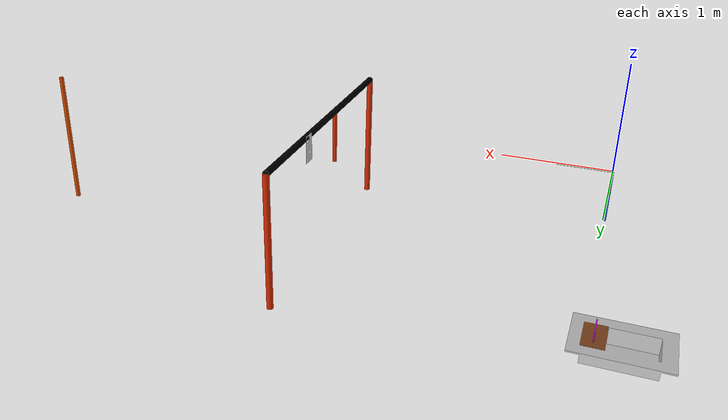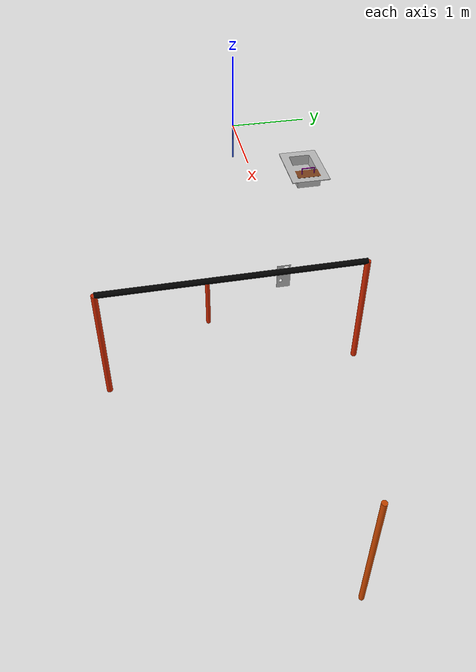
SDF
<sdf version="1.7">
 <world name="lake">
  <physics name="default_physics" default="1" type="ode">
   <max_step_size>0.002</max_step_size>
   <real_time_factor>1</real_time_factor>
   <real_time_update_rate>500</real_time_update_rate>
   <ode>
    <solver>
     <type>quick</type>
     <iters>50</iters>
     <sor>0.5</sor>
     <use_dynamic_moi_rescaling>0</use_dynamic_moi_rescaling>
    </solver>
    <constraints>
     <cfm>0</cfm>
     <erp>0.2</erp>
     <contact_max_correcting_vel>100</contact_max_correcting_vel>
     <contact_surface_layer>0.001</contact_surface_layer>
    </constraints>
   </ode>
  </physics>
  <scene>
   <ambient>0.01 0.01 0.01 1</ambient>
   <sky><clouds><speed>12</speed></clouds></sky>
   <shadows>0</shadows>
   <background>0.7 0.7 0.7 1</background>
  </scene>
  <spherical_coordinates>
   <latitude_deg>47.6279</latitude_deg>
   <longitude_deg>9.33455</longitude_deg>
   <surface_model>EARTH_WGS84</surface_model>
   <elevation>0</elevation>
   <heading_deg>0</heading_deg>
  </spherical_coordinates>
  <light name="sun1" type="directional">
   <pose>50 0 150 0 -0 0</pose>
   <diffuse>1 1 1 1</diffuse>
   <specular>0.1 0.1 0.1 1</specular>
   <direction>0.3 0.3 -1</direction>
   <cast_shadows>0</cast_shadows>
   <attenuation><range>10</range></attenuation>
   <spot><inner_angle>0</inner_angle><outer_angle>0</outer_angle><falloff>0</falloff></spot>
  </light>
  <light name="sun" type="directional">
   <cast_shadows>0</cast_shadows>
   <pose>0 0 10 0 -0 0</pose>
   <diffuse>0.8 0.8 0.8 1</diffuse>
   <specular>0.2 0.2 0.2 1</specular>
   <attenuation>
    <range>1000</range>
    <constant>0.9</constant>
    <linear>0.01</linear>
    <quadratic>0.001</quadratic>
   </attenuation>
   <direction>-0.5 0.1 -0.9</direction>
   <spot><inner_angle>0</inner_angle><outer_angle>0</outer_angle><falloff>0</falloff></spot>
  </light>
  <model name="world_ned">
   <static>1</static>
   <link name="world_ned">
    <gravity>0</gravity>
    <pose>0 0 0 -3.14159 -0 1.5708</pose>
    <visual name="N_visual">
     <pose>0.25 0 0 1.5708 -0 1.5708</pose>
     <geometry><cylinder><radius>0.01</radius><length>0.5</length></cylinder></geometry>
     <material>
      <script><uri>file://media/materials/scripts/gazebo.material</uri><name>Gazebo/Red</name></script>
     </material>
    </visual>
    <visual name="E_visual">
     <pose>0 0.25 0 1.5708 -0 0</pose>
     <geometry><cylinder><radius>0.01</radius><length>0.5</length></cylinder></geometry>
     <material>
      <script><uri>file://media/materials/scripts/gazebo.material</uri><name>Gazebo/Green</name></script>
     </material>
    </visual>
    <visual name="D_visual">
     <pose>0 0 0.25 0 -0 0</pose>
     <geometry><cylinder><radius>0.01</radius><length>0.5</length></cylinder></geometry>
     <material>
      <script><uri>file://media/materials/scripts/gazebo.material</uri><name>Gazebo/Blue</name></script>
     </material>
    </visual>
   </link>
  </model>
  <plugin name="underwater_current_plugin" filename="libuuv_underwater_current_ros_plugin.so">
   <namespace>hydrodynamics</namespace>
   <constant_current>
    <topic>current_velocity</topic>
    <velocity><mean>0</mean><min>0</min><max>5</max><mu>0.0</mu><noiseAmp>0.0</noiseAmp></velocity>
    <horizontal_angle>
     <mean>0</mean>
     <min>-3.141592653589793238</min>
     <max>3.141592653589793238</max>
     <mu>0.0</mu>
     <noiseAmp>0.0</noiseAmp>
    </horizontal_angle>
    <vertical_angle>
     <mean>0</mean>
     <min>-3.141592653589793238</min>
     <max>3.141592653589793238</max>
     <mu>0.0</mu>
     <noiseAmp>0.0</noiseAmp>
    </vertical_angle>
   </constant_current>
  </plugin>
  <plugin name="sc_interface" filename="libuuv_sc_ros_interface_plugin.so"/>
  <gravity>0 0 -9.8</gravity>
  <magnetic_field>6e-06 2.3e-05 -4.2e-05</magnetic_field>
  <atmosphere type="adiabatic"/>
  <model name="gate">
   <static>1</static>
   <link name="link">
    <must_be_base_link>1</must_be_base_link>
    <collision name="collision">
     <geometry><mesh><uri>model://gate/meshes/gate.dae</uri></mesh></geometry>
    </collision>
    <visual name="visual">
     <cast_shadows>0</cast_shadows>
     <geometry><mesh><uri>model://gate/meshes/gate.dae</uri></mesh></geometry>
    </visual>
   </link>
   <pose>3.01586 -2.06417 -1.64571 0 -0 1.56898</pose>
  </model>
  <model name="gman_torpedo">
   <static>1</static>
   <link name="link">
    <must_be_base_link>1</must_be_base_link>
    <collision name="collision">
     <geometry><mesh><uri>model://gman_torpedo/meshes/GmanTorpedoCutout.dae</uri></mesh></geometry>
    </collision>
    <visual name="visual">
     <cast_shadows>0</cast_shadows>
     <geometry><mesh><uri>model://gman_torpedo/meshes/GmanTorpedoCutout.dae</uri></mesh></geometry>
    </visual>
   </link>
   <pose>2.977 -0.004194 -0.241483 0 0 -1.58169</pose>
  </model>
  <model name="bin">
   <static>1</static>
   <link name="link">
    <must_be_base_link>1</must_be_base_link>
    <collision name="collision">
     <geometry><mesh><uri>model://bin/meshes/bin.dae</uri></mesh></geometry>
    </collision>
    <visual name="visual">
     <cast_shadows>0</cast_shadows>
     <geometry><mesh><uri>model://bin/meshes/bin.dae</uri></mesh></geometry>
    </visual>
   </link>
   <pose>0 1 -1 0 0 0</pose>
  </model>
  <model name="pole">
   <static>1</static>
   <link name="link">
    <must_be_base_link>1</must_be_base_link>
    <collision name="collision">
     <geometry><mesh><uri>model://pole/meshes/pole.dae</uri></mesh></geometry>
    </collision>
    <visual name="visual">
     <cast_shadows>0</cast_shadows>
     <geometry><mesh><uri>model://pole/meshes/pole.dae</uri></mesh></geometry>
    </visual>
   </link>
   <pose>6.04141 -0.029448 -0.617743 0 -0 0</pose>
  </model>
 </world>
</sdf>
